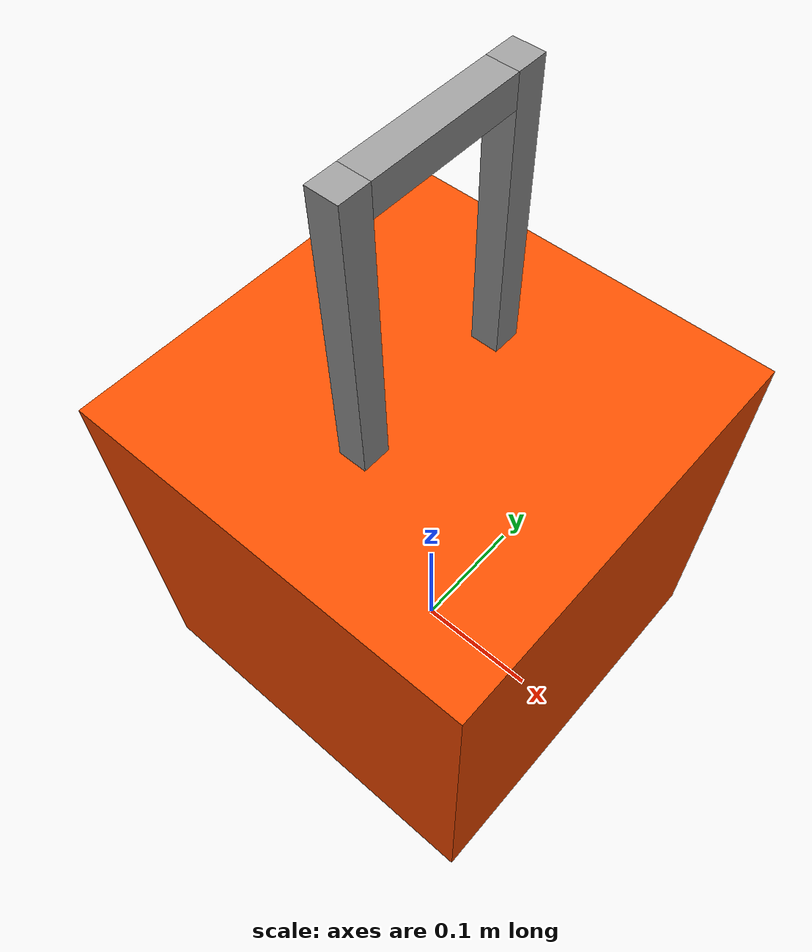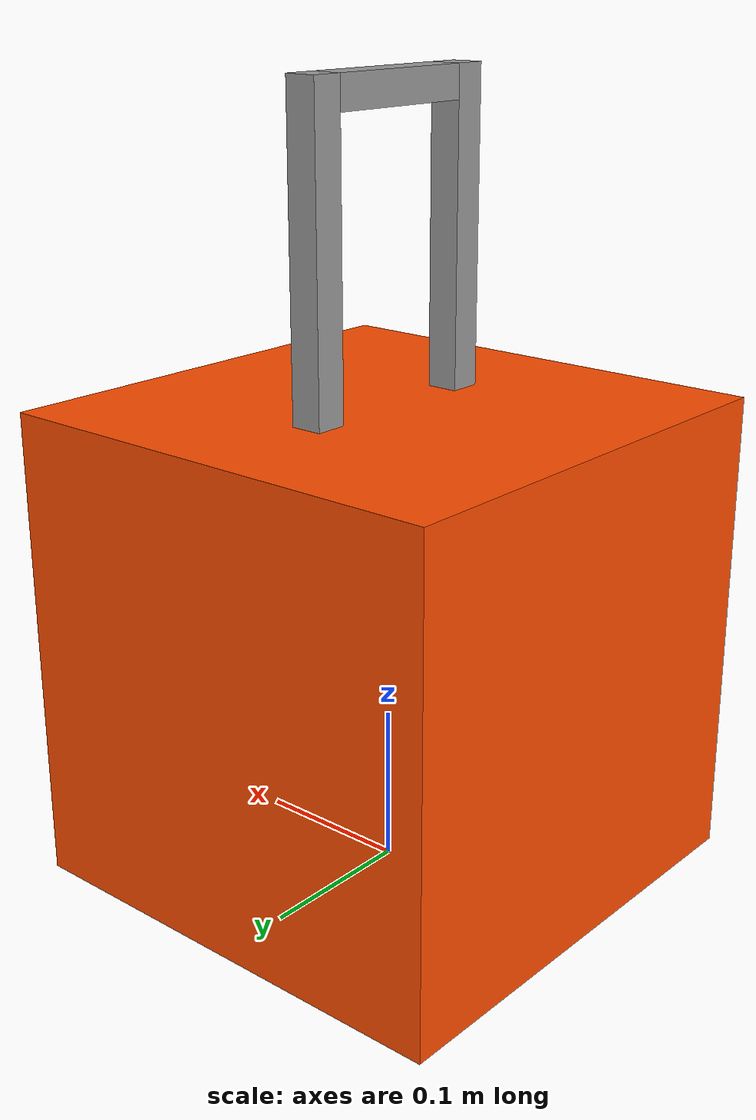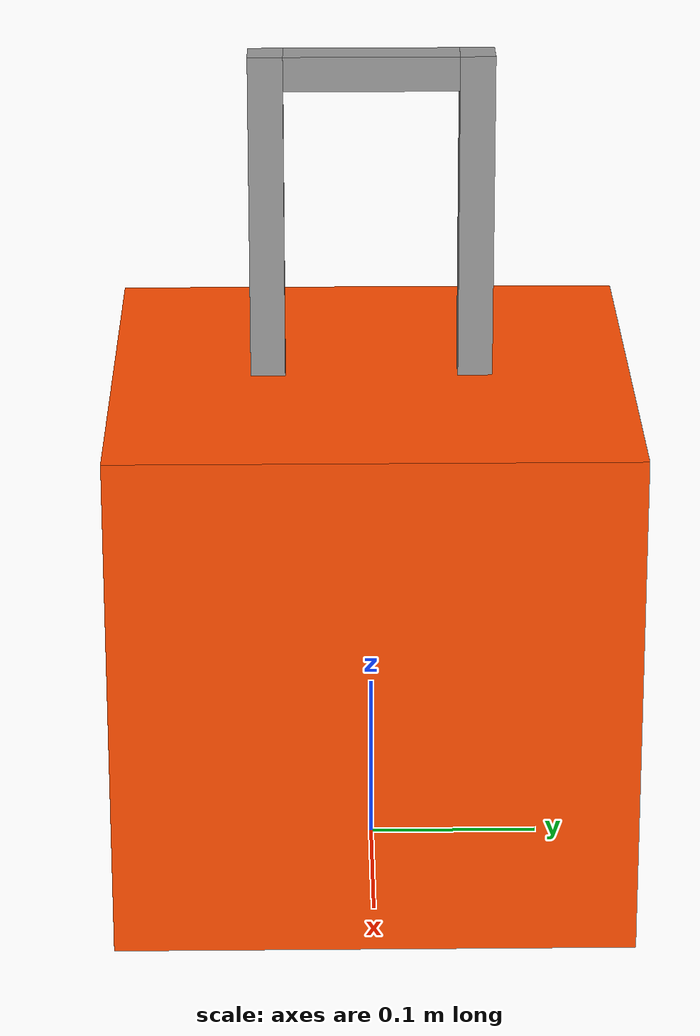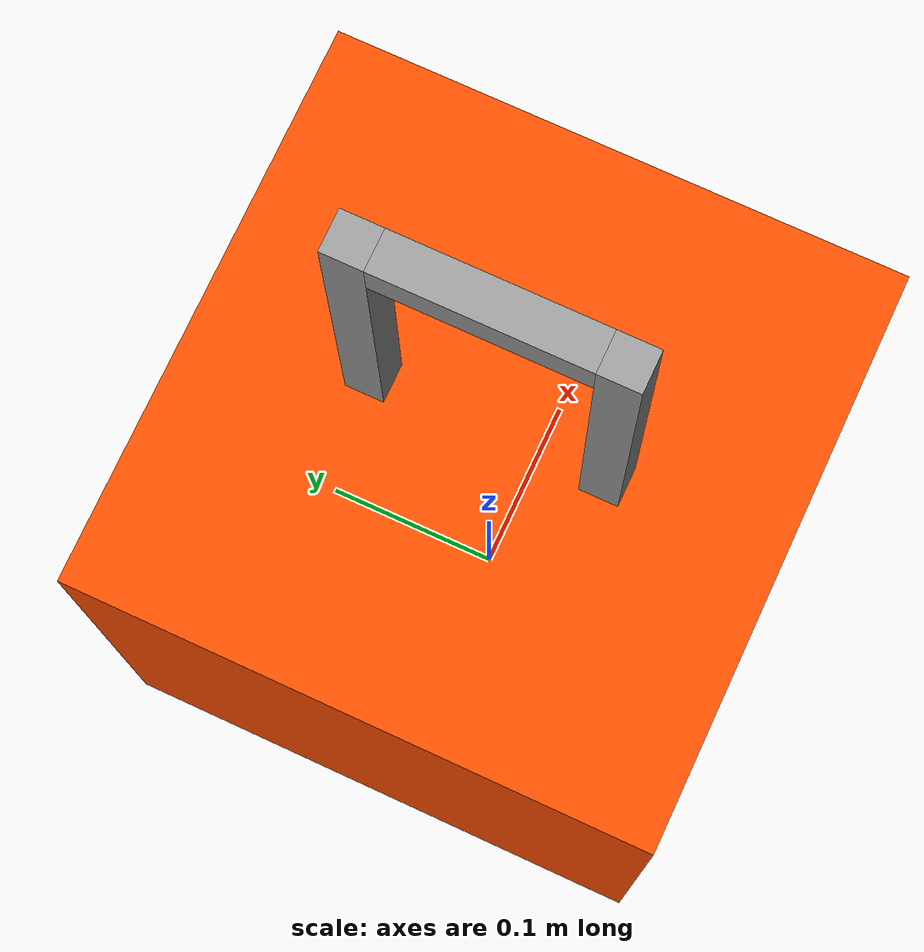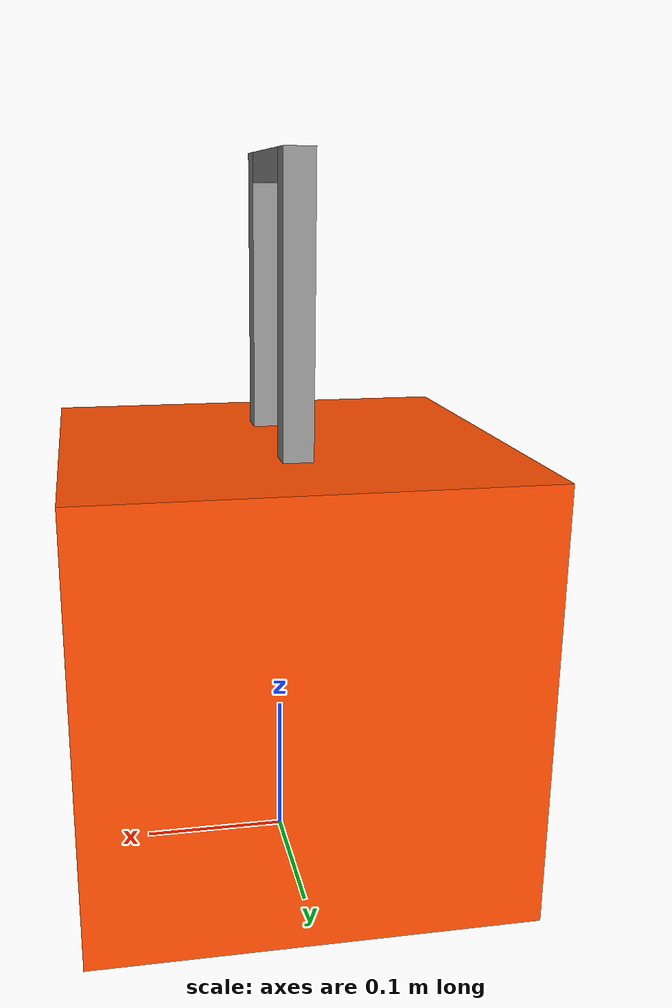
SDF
<?xml version='1.0'?>
<sdf version='1.6'>
  <model name='Aid_Box'>
    <link name='link_0'>
      <pose frame=''>0 0 0.48 0 -0 0</pose>
      <inertial>
        <mass>0.01</mass>
        <inertia>
          <ixx>0.166667</ixx>
          <ixy>0</ixy>
          <ixz>0</ixz>
          <iyy>0.166667</iyy>
          <iyz>0</iyz>
          <izz>0.166667</izz>
        </inertia>
        <pose frame=''>0 0 0 0 -0 0</pose>
      </inertial>
      <self_collide>0</self_collide>
      <kinematic>0</kinematic>
      <gravity>1</gravity>
      <visual name='visual'>
        <pose frame=''>0 0 0 0 -0 0</pose>
        <geometry>
          <box>
            <size>0.02 0.1 0.02</size>
          </box>
        </geometry>
        <material>
          <lighting>1</lighting>
          <script>
            <uri>file://media/materials/scripts/gazebo.material</uri>
            <name>Gazebo/Grey</name>
          </script>
          <ambient>0 0 0 1</ambient>
          <diffuse>0 0 0 1</diffuse>
          <specular>0.01 0.01 0.01 1</specular>
          <emissive>0 0 0 1</emissive>
          <shader type='vertex'>
            <normal_map>__default__</normal_map>
          </shader>
        </material>
        <cast_shadows>1</cast_shadows>
        <transparency>0</transparency>
      </visual>
      <collision name='collision'>
        <laser_retro>0</laser_retro>
        <max_contacts>10</max_contacts>
        <pose frame=''>0 0 0 0 -0 0</pose>
        <geometry>
          <box>
            <size>0.02 0.1 0.02</size>
          </box>
        </geometry>
        <surface>
          <friction>
            <ode>
              <mu>1</mu>
              <mu2>1</mu2>
              <fdir1>0 0 0</fdir1>
              <slip1>0</slip1>
              <slip2>0</slip2>
            </ode>
            <torsional>
              <coefficient>1</coefficient>
              <patch_radius>0</patch_radius>
              <surface_radius>0</surface_radius>
              <use_patch_radius>1</use_patch_radius>
              <ode>
                <slip>0</slip>
              </ode>
            </torsional>
          </friction>
          <bounce>
            <restitution_coefficient>0</restitution_coefficient>
            <threshold>1e+06</threshold>
          </bounce>
          <contact>
            <collide_without_contact>0</collide_without_contact>
            <collide_without_contact_bitmask>1</collide_without_contact_bitmask>
            <collide_bitmask>1</collide_bitmask>
            <ode>
              <soft_cfm>0</soft_cfm>
              <soft_erp>0.2</soft_erp>
              <kp>1e+13</kp>
              <kd>1</kd>
              <max_vel>0.01</max_vel>
              <min_depth>0</min_depth>
            </ode>
            <bullet>
              <split_impulse>1</split_impulse>
              <split_impulse_penetration_threshold>-0.01</split_impulse_penetration_threshold>
              <soft_cfm>0</soft_cfm>
              <soft_erp>0.2</soft_erp>
              <kp>1e+13</kp>
              <kd>1</kd>
            </bullet>
          </contact>
        </surface>
      </collision>
    </link>
    <link name='link_0_clone'>
      <pose frame=''>0 0.06 0.39 0 -0 0</pose>
      <inertial>
        <mass>0.02</mass>
        <inertia>
          <ixx>0.166667</ixx>
          <ixy>0</ixy>
          <ixz>0</ixz>
          <iyy>0.166667</iyy>
          <iyz>0</iyz>
          <izz>0.166667</izz>
        </inertia>
        <pose frame=''>0 0 0 0 -0 0</pose>
      </inertial>
      <self_collide>0</self_collide>
      <kinematic>0</kinematic>
      <gravity>1</gravity>
      <visual name='visual'>
        <pose frame=''>0 0 0 0 -0 0</pose>
        <geometry>
          <box>
            <size>0.02 0.02 0.2</size>
          </box>
        </geometry>
        <material>
          <lighting>1</lighting>
          <script>
            <uri>file://media/materials/scripts/gazebo.material</uri>
            <name>Gazebo/Grey</name>
          </script>
          <ambient>1 1 1 1</ambient>
          <diffuse>1 1 1 1</diffuse>
          <specular>0.01 0.01 0.01 1</specular>
          <emissive>0 0 0 1</emissive>
          <shader type='vertex'>
            <normal_map>__default__</normal_map>
          </shader>
        </material>
        <cast_shadows>1</cast_shadows>
        <transparency>0</transparency>
      </visual>
      <collision name='collision'>
        <laser_retro>0</laser_retro>
        <max_contacts>10</max_contacts>
        <pose frame=''>0 0 0 0 -0 0</pose>
        <geometry>
          <box>
            <size>0.02 0.02 0.2</size>
          </box>
        </geometry>
        <surface>
          <friction>
            <ode>
              <mu>1</mu>
              <mu2>1</mu2>
              <fdir1>0 0 0</fdir1>
              <slip1>0</slip1>
              <slip2>0</slip2>
            </ode>
            <torsional>
              <coefficient>1</coefficient>
              <patch_radius>0</patch_radius>
              <surface_radius>0</surface_radius>
              <use_patch_radius>1</use_patch_radius>
              <ode>
                <slip>0</slip>
              </ode>
            </torsional>
          </friction>
          <bounce>
            <restitution_coefficient>0</restitution_coefficient>
            <threshold>1e+06</threshold>
          </bounce>
          <contact>
            <collide_without_contact>0</collide_without_contact>
            <collide_without_contact_bitmask>1</collide_without_contact_bitmask>
            <collide_bitmask>1</collide_bitmask>
            <ode>
              <soft_cfm>0</soft_cfm>
              <soft_erp>0.2</soft_erp>
              <kp>1e+13</kp>
              <kd>1</kd>
              <max_vel>0.01</max_vel>
              <min_depth>0</min_depth>
            </ode>
            <bullet>
              <split_impulse>1</split_impulse>
              <split_impulse_penetration_threshold>-0.01</split_impulse_penetration_threshold>
              <soft_cfm>0</soft_cfm>
              <soft_erp>0.2</soft_erp>
              <kp>1e+13</kp>
              <kd>1</kd>
            </bullet>
          </contact>
        </surface>
      </collision>
    </link>
    <link name='link_0_clone_clone'>
      <pose frame=''>0 -0.06 0.39 0 -0 0</pose>
      <inertial>
        <mass>0.02</mass>
        <inertia>
          <ixx>0.166667</ixx>
          <ixy>0</ixy>
          <ixz>0</ixz>
          <iyy>0.166667</iyy>
          <iyz>0</iyz>
          <izz>0.166667</izz>
        </inertia>
        <pose frame=''>0 0 0 0 -0 0</pose>
      </inertial>
      <self_collide>0</self_collide>
      <kinematic>0</kinematic>
      <gravity>1</gravity>
      <visual name='visual'>
        <pose frame=''>0 0 0 0 -0 0</pose>
        <geometry>
          <box>
            <size>0.02 0.02 0.2</size>
          </box>
        </geometry>
        <material>
          <lighting>1</lighting>
          <script>
            <uri>file://media/materials/scripts/gazebo.material</uri>
            <name>Gazebo/Grey</name>
          </script>
          <ambient>1 1 1 1</ambient>
          <diffuse>1 1 1 1</diffuse>
          <specular>0.01 0.01 0.01 1</specular>
          <emissive>0 0 0 1</emissive>
          <shader type='vertex'>
            <normal_map>__default__</normal_map>
          </shader>
        </material>
        <cast_shadows>1</cast_shadows>
        <transparency>0</transparency>
      </visual>
      <collision name='collision'>
        <laser_retro>0</laser_retro>
        <max_contacts>10</max_contacts>
        <pose frame=''>0 0 0 0 -0 0</pose>
        <geometry>
          <box>
            <size>0.02 0.02 0.2</size>
          </box>
        </geometry>
        <surface>
          <friction>
            <ode>
              <mu>1</mu>
              <mu2>1</mu2>
              <fdir1>0 0 0</fdir1>
              <slip1>0</slip1>
              <slip2>0</slip2>
            </ode>
            <torsional>
              <coefficient>1</coefficient>
              <patch_radius>0</patch_radius>
              <surface_radius>0</surface_radius>
              <use_patch_radius>1</use_patch_radius>
              <ode>
                <slip>0</slip>
              </ode>
            </torsional>
          </friction>
          <bounce>
            <restitution_coefficient>0</restitution_coefficient>
            <threshold>1e+06</threshold>
          </bounce>
          <contact>
            <collide_without_contact>0</collide_without_contact>
            <collide_without_contact_bitmask>1</collide_without_contact_bitmask>
            <collide_bitmask>1</collide_bitmask>
            <ode>
              <soft_cfm>0</soft_cfm>
              <soft_erp>0.2</soft_erp>
              <kp>1e+13</kp>
              <kd>1</kd>
              <max_vel>0.01</max_vel>
              <min_depth>0</min_depth>
            </ode>
            <bullet>
              <split_impulse>1</split_impulse>
              <split_impulse_penetration_threshold>-0.01</split_impulse_penetration_threshold>
              <soft_cfm>0</soft_cfm>
              <soft_erp>0.2</soft_erp>
              <kp>1e+13</kp>
              <kd>1</kd>
            </bullet>
          </contact>
        </surface>
      </collision>
    </link>
    <link name='link_1'>
      <pose frame=''>0 0 0.15 0 -0 0</pose>
      <inertial>
        <mass>0.9</mass>
        <inertia>
          <ixx>0.166667</ixx>
          <ixy>0</ixy>
          <ixz>0</ixz>
          <iyy>0.166667</iyy>
          <iyz>0</iyz>
          <izz>0.166667</izz>
        </inertia>
        <pose frame=''>0 0 0 0 -0 0</pose>
      </inertial>
      <self_collide>0</self_collide>
      <kinematic>0</kinematic>
      <gravity>1</gravity>
      <visual name='visual'>
        <pose frame=''>0 0 0 0 -0 0</pose>
        <geometry>
          <box>
            <size>0.3 0.3 0.3</size>
          </box>
        </geometry>
        <material>
          <lighting>1</lighting>
          <script>
            <uri>file://media/materials/scripts/gazebo.material</uri>
            <name>Gazebo/Grey</name>
          </script>
          <ambient>1 0.3 0 1</ambient>
          <diffuse>1 0.3 0 1</diffuse>
          <specular>0.01 0.01 0.01 1</specular>
          <emissive>0 0 0 1</emissive>
          <shader type='vertex'>
            <normal_map>__default__</normal_map>
          </shader>
        </material>
        <cast_shadows>1</cast_shadows>
        <transparency>0</transparency>
      </visual>
      <collision name='collision'>
        <laser_retro>0</laser_retro>
        <max_contacts>10</max_contacts>
        <pose frame=''>0 0 0 0 -0 0</pose>
        <geometry>
          <box>
            <size>0.3 0.3 0.3</size>
          </box>
        </geometry>
        <surface>
          <friction>
            <ode>
              <mu>1</mu>
              <mu2>1</mu2>
              <fdir1>0 0 0</fdir1>
              <slip1>0</slip1>
              <slip2>0</slip2>
            </ode>
            <torsional>
              <coefficient>1</coefficient>
              <patch_radius>0</patch_radius>
              <surface_radius>0</surface_radius>
              <use_patch_radius>1</use_patch_radius>
              <ode>
                <slip>0</slip>
              </ode>
            </torsional>
          </friction>
          <bounce>
            <restitution_coefficient>0</restitution_coefficient>
            <threshold>1e+06</threshold>
          </bounce>
          <contact>
            <collide_without_contact>0</collide_without_contact>
            <collide_without_contact_bitmask>1</collide_without_contact_bitmask>
            <collide_bitmask>1</collide_bitmask>
            <ode>
              <soft_cfm>0</soft_cfm>
              <soft_erp>0.2</soft_erp>
              <kp>1e+13</kp>
              <kd>1</kd>
              <max_vel>0.01</max_vel>
              <min_depth>0</min_depth>
            </ode>
            <bullet>
              <split_impulse>1</split_impulse>
              <split_impulse_penetration_threshold>-0.01</split_impulse_penetration_threshold>
              <soft_cfm>0</soft_cfm>
              <soft_erp>0.2</soft_erp>
              <kp>1e+13</kp>
              <kd>1</kd>
            </bullet>
          </contact>
        </surface>
      </collision>
    </link>
    <joint name='link_0_JOINT_2' type='fixed'>
      <parent>link_0</parent>
      <child>link_0_clone_clone</child>
      <pose frame=''>0 0 0 0 -0 0</pose>
      <physics>
        <ode>
          <limit>
            <cfm>0</cfm>
            <erp>0.2</erp>
          </limit>
          <suspension>
            <cfm>0</cfm>
            <erp>0.2</erp>
          </suspension>
        </ode>
      </physics>
    </joint>
    <joint name='link_0_JOINT_3' type='fixed'>
      <parent>link_0</parent>
      <child>link_0_clone</child>
      <pose frame=''>0 0 0 0 -0 0</pose>
      <physics>
        <ode>
          <limit>
            <cfm>0</cfm>
            <erp>0.2</erp>
          </limit>
          <suspension>
            <cfm>0</cfm>
            <erp>0.2</erp>
          </suspension>
        </ode>
      </physics>
    </joint>
    <joint name='link_1_JOINT_0' type='fixed'>
      <parent>link_1</parent>
      <child>link_0_clone_clone</child>
      <pose frame=''>0 0 0 0 -0 0</pose>
      <physics>
        <ode>
          <limit>
            <cfm>0</cfm>
            <erp>0.2</erp>
          </limit>
          <suspension>
            <cfm>0</cfm>
            <erp>0.2</erp>
          </suspension>
        </ode>
      </physics>
    </joint>
    <joint name='link_1_JOINT_1' type='fixed'>
      <parent>link_1</parent>
      <child>link_0_clone</child>
      <pose frame=''>0 0 0 0 -0 0</pose>
      <physics>
        <ode>
          <limit>
            <cfm>0</cfm>
            <erp>0.2</erp>
          </limit>
          <suspension>
            <cfm>0</cfm>
            <erp>0.2</erp>
          </suspension>
        </ode>
      </physics>
    </joint>
    <static>0</static>
    <allow_auto_disable>1</allow_auto_disable>
  </model>
</sdf>
